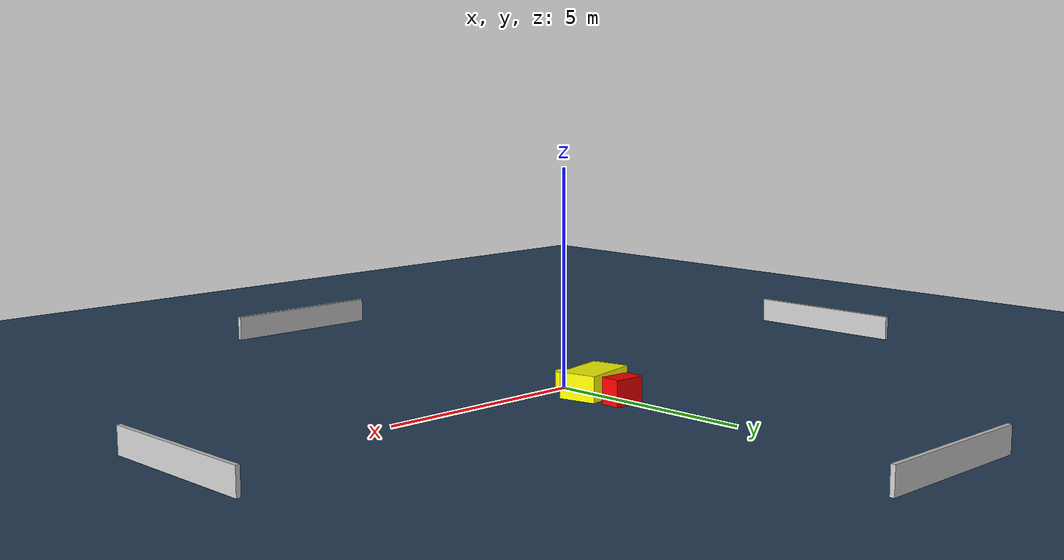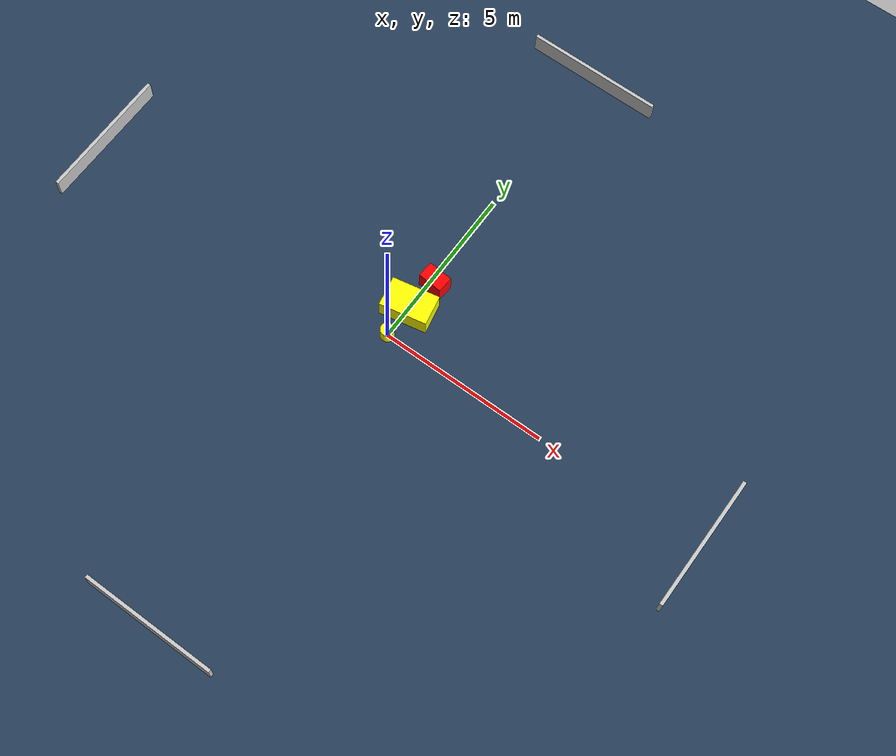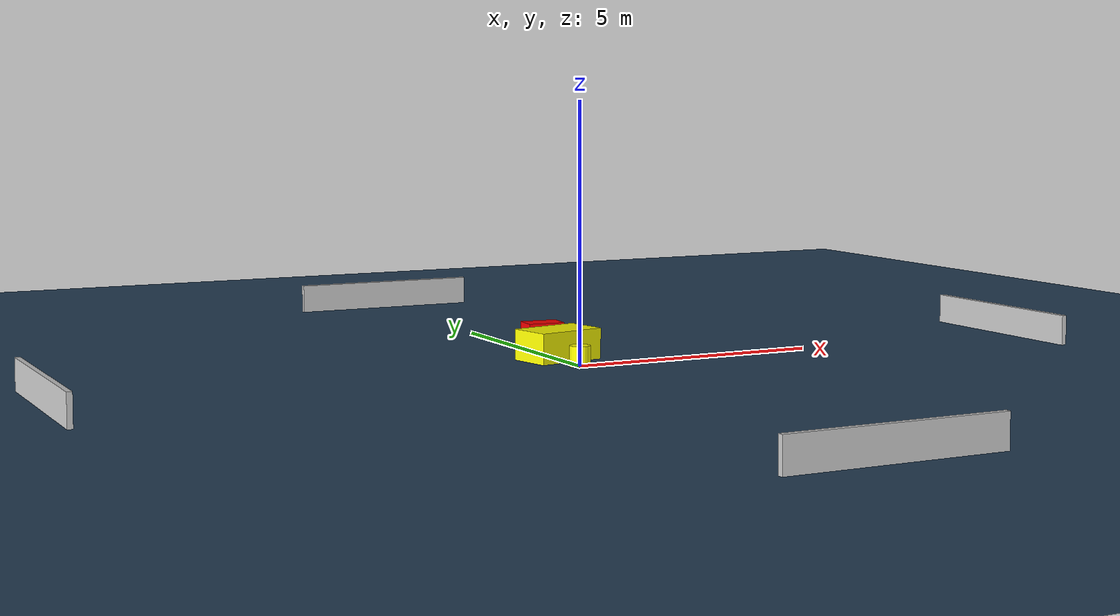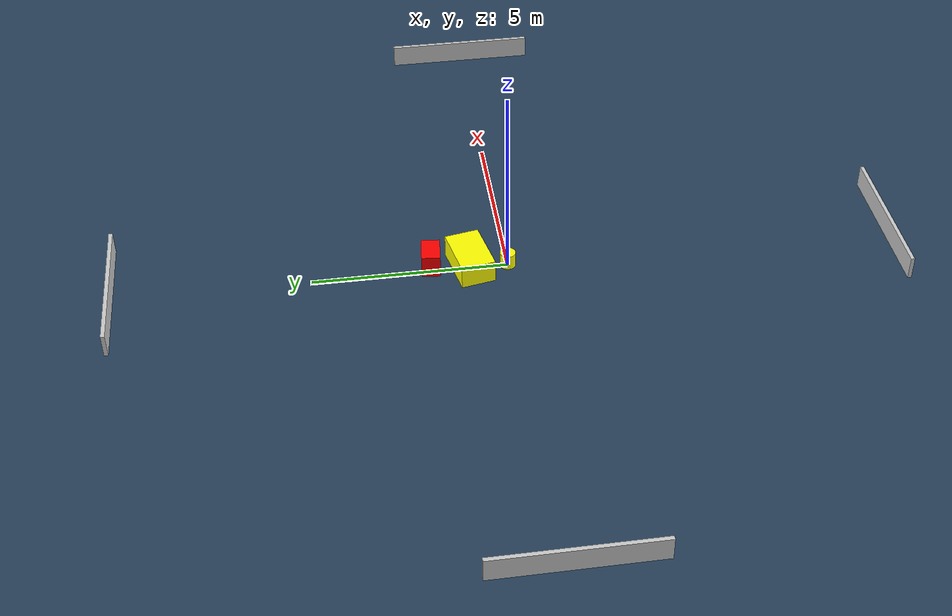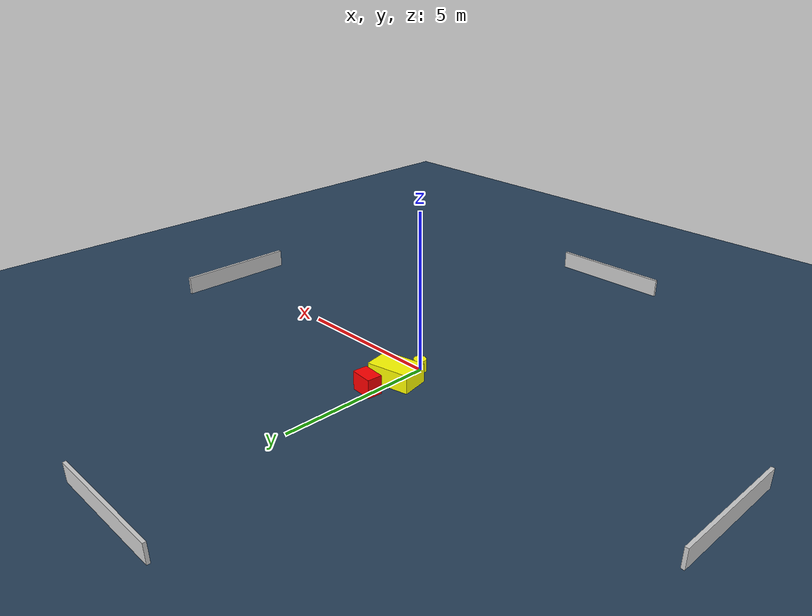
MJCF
<?xml version="1.0" ?>
<mujoco model="generated_environment">
  <option timestep="0.01" integrator="RK4" cone="elliptic"/>
  <default>
    <geom density="1"/>
  </default>
  <asset>
    <texture builtin="gradient" height="3072" name="skybox" rgb1="0.3 0.5 0.7" rgb2="0 0 0" type="skybox" width="512"/>
    <texture builtin="checker" height="300" name="groundplane" rgb1="0.2 0.3 0.4" rgb2="0.1 0.2 0.3" type="2d" width="300"/>
    <material name="groundplane" reflectance="0.2" texrepeat="5 5" texture="groundplane"/>
  </asset>
  <worldbody>
    <light dir="0 0 -1" directional="true" pos="0 0 1.5"/>
    <geom condim="3" friction="0.5 0.005 0.001" material="groundplane" name="floor" pos="0 0 0" size="0 0 0.05" type="plane"/>
    <body name="walls">
      <geom name="wall_1" condim="4" pos="-10.0 0.0 0.3" rgba="0.800000011920929 0.800000011920929 0.800000011920929 1.0" size="0.05 2.0 0.3" type="box"/>
      <geom name="wall_2" condim="4" pos="10.0 0.0 0.3" rgba="0.800000011920929 0.800000011920929 0.800000011920929 1.0" size="0.05 2.0 0.3" type="box"/>
      <geom name="wall_3" condim="4" pos="0.0 -10.0 0.3" rgba="0.800000011920929 0.800000011920929 0.800000011920929 1.0" size="2.0 0.05 0.3" type="box"/>
      <geom name="wall_4" condim="4" pos="0.0 10.0 0.3" rgba="0.800000011920929 0.800000011920929 0.800000011920929 1.0" size="2.0 0.05 0.3" type="box"/>
    </body>
    <body name="robot">
      <joint name="joint_x" type="slide" pos="0 0 0" axis="1 0 0"/>
      <joint name="joint_y" type="slide" pos="0 0 0" axis="0 1 0"/>
      <geom name="robot" type="cylinder" pos="0.0 0.0 0.2" size="0.2 0.2 0.0" mass="5.0" friction="1.0 0.005 0.0001" condim="4" rgba="1.0 1.0 0.0 1.0"/>
    </body>
    <body name="obstacle_1_movable">
      <geom name="obstacle_1_movable" condim="4" pos="0.022653762739295324 0.9676742528194799 0.3" euler="0 0 11.166205345330669" friction="0.0 0.005 0.001" rgba="1.0 1.0 0.0 1.0" size="0.6960274809156615 0.44373228096675144 0.3" type="box" mass="0.1"/>
      <joint type="free"/>
    </body>
    <body name="obstacle_2_static">
      <geom name="obstacle_2_static" condim="4" pos="0.17033059561817382 1.9539333243951669 0.3" euler="0 0 265.18510051606233" friction="0.0 0.005 0.001" rgba="1.0 0.0 0.0 1.0" size="0.23877091997455488 0.36474031707301524 0.3" type="box"/>
    </body>
  </worldbody>
  <actuator>
    <motor name="actuator_x" joint="joint_x" gear="1" ctrlrange="-1 1"/>
    <motor name="actuator_y" joint="joint_y" gear="1" ctrlrange="-1 1"/>
  </actuator>
</mujoco>
